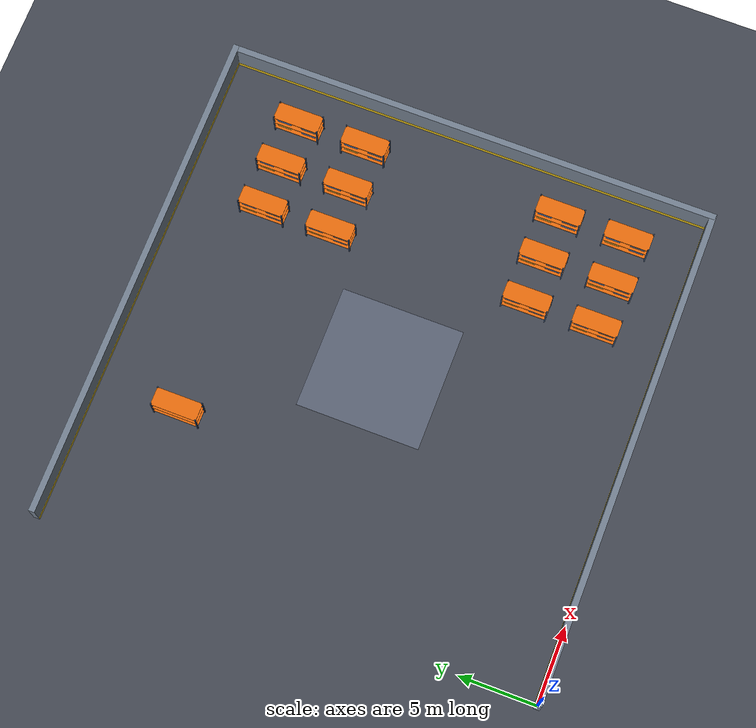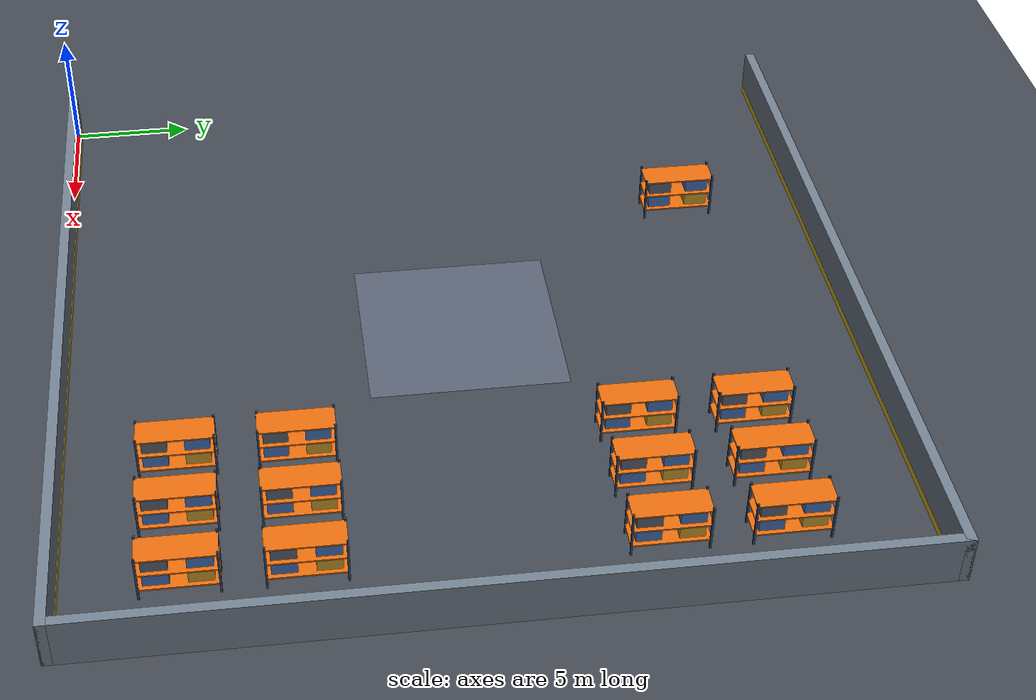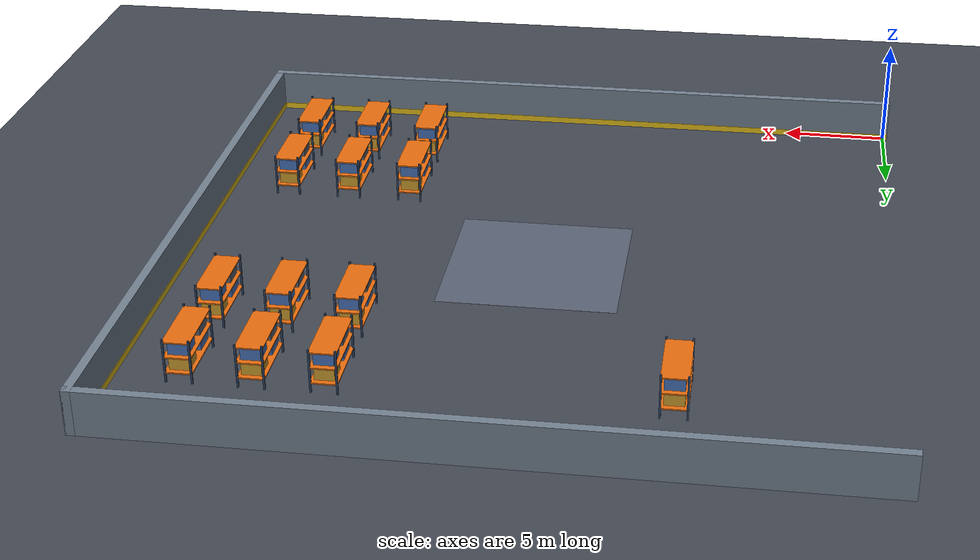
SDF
<sdf version="1.8">
 <world name="warehouse_m9_v2">
  <model name="ground_plane">
   <static>true</static>
   <pose>16.0 16.0 0.0 0 0 0</pose>
   <link name="floor_link">
    <collision name="collision">
     <geometry><plane><normal>0 0 1</normal><size>40 40</size></plane></geometry>
     <surface><friction><ode><mu>100</mu><mu2>50</mu2></ode></friction></surface>
    </collision>
    <visual name="floor_visual">
     <geometry><plane><normal>0 0 1</normal><size>40 40</size></plane></geometry>
     <material>
      <ambient>0.22 0.24 0.27 1.0</ambient>
      <diffuse>0.26 0.28 0.32 1.0</diffuse>
      <specular>0.45 0.45 0.50 1.0</specular>
     </material>
    </visual>
   </link>
  </model>
  <model name="wall_north">
   <static>true</static>
   <pose>16.0 32.0 1.0 0 0 0</pose>
   <link name="link">
    <collision name="col"><geometry><box><size>32.4 0.4 2.0</size></box></geometry></collision>
    <visual name="wall_vis">
     <geometry><box><size>32.4 0.4 2.0</size></box></geometry>
     <material><ambient>0.40 0.44 0.50 1.0</ambient><diffuse>0.45 0.50 0.56 1.0</diffuse></material>
    </visual>
    <visual name="kickplate">
     <pose>0.0 -0.201 -0.85 0 0 0</pose>
     <geometry><box><size>32.38 0.02 0.30</size></box></geometry>
     <material><ambient>0.85 0.70 0.10 1.0</ambient><diffuse>0.90 0.75 0.10 1.0</diffuse></material>
    </visual>
   </link>
  </model>
  <model name="wall_south">
   <static>true</static>
   <pose>16.0 0.0 1.0 0 0 0</pose>
   <link name="link">
    <collision name="col"><geometry><box><size>32.4 0.4 2.0</size></box></geometry></collision>
    <visual name="wall_vis">
     <geometry><box><size>32.4 0.4 2.0</size></box></geometry>
     <material><ambient>0.40 0.44 0.50 1.0</ambient><diffuse>0.45 0.50 0.56 1.0</diffuse></material>
    </visual>
    <visual name="kickplate">
     <pose>0.0 0.201 -0.85 0 0 0</pose>
     <geometry><box><size>32.38 0.02 0.30</size></box></geometry>
     <material><ambient>0.85 0.70 0.10 1.0</ambient><diffuse>0.90 0.75 0.10 1.0</diffuse></material>
    </visual>
   </link>
  </model>
  <model name="wall_east">
   <static>true</static>
   <pose>32.0 16.0 1.0 0 0 0</pose>
   <link name="link">
    <collision name="col"><geometry><box><size>0.4 32.4 2.0</size></box></geometry></collision>
    <visual name="wall_vis">
     <geometry><box><size>0.4 32.4 2.0</size></box></geometry>
     <material><ambient>0.40 0.44 0.50 1.0</ambient><diffuse>0.45 0.50 0.56 1.0</diffuse></material>
    </visual>
    <visual name="kickplate">
     <pose>-0.201 0.0 -0.85 0 0 0</pose>
     <geometry><box><size>0.02 32.38 0.30</size></box></geometry>
     <material><ambient>0.85 0.70 0.10 1.0</ambient><diffuse>0.90 0.75 0.10 1.0</diffuse></material>
    </visual>
   </link>
  </model>
  <model name="hub_markings">
   <static>true</static>
   <pose>16.0 16.0 0.002 0 0 0</pose>
   <link name="hub_link">
    <visual name="hub_perimeter">
     <geometry><box><size>8.0 8.0 0.001</size></box></geometry>
     <material><ambient>0.30 0.32 0.38 1.0</ambient><diffuse>0.35 0.38 0.45 1.0</diffuse></material>
    </visual>
   </link>
  </model>
  <model name="rack_04">
   <static>true</static>
   <pose>23.0 4.5 1.0 0 0 0</pose>
   <link name="link">
    <collision name="col"><geometry><box><size>1.2 3.0 2.0</size></box></geometry></collision>
    <visual name="frame_fl">
     <pose>-0.55 -1.45 0 0 0 0</pose>
     <geometry><box><size>0.08 0.08 2.0</size></box></geometry>
     <material><ambient>0.15 0.22 0.32 1.0</ambient><diffuse>0.18 0.26 0.38 1.0</diffuse></material>
    </visual>
    <visual name="frame_fr">
     <pose>0.55 -1.45 0 0 0 0</pose>
     <geometry><box><size>0.08 0.08 2.0</size></box></geometry>
     <material><ambient>0.15 0.22 0.32 1.0</ambient><diffuse>0.18 0.26 0.38 1.0</diffuse></material>
    </visual>
    <visual name="frame_rl">
     <pose>-0.55 1.45 0 0 0 0</pose>
     <geometry><box><size>0.08 0.08 2.0</size></box></geometry>
     <material><ambient>0.15 0.22 0.32 1.0</ambient><diffuse>0.18 0.26 0.38 1.0</diffuse></material>
    </visual>
    <visual name="frame_rr">
     <pose>0.55 1.45 0 0 0 0</pose>
     <geometry><box><size>0.08 0.08 2.0</size></box></geometry>
     <material><ambient>0.15 0.22 0.32 1.0</ambient><diffuse>0.18 0.26 0.38 1.0</diffuse></material>
    </visual>
    <visual name="shelf_tier1">
     <pose>0 0 -0.55 0 0 0</pose>
     <geometry><box><size>1.16 2.96 0.06</size></box></geometry>
     <material><ambient>0.85 0.38 0.05 1.0</ambient><diffuse>0.90 0.42 0.05 1.0</diffuse></material>
    </visual>
    <visual name="shelf_tier2">
     <pose>0 0 0.15 0 0 0</pose>
     <geometry><box><size>1.16 2.96 0.06</size></box></geometry>
     <material><ambient>0.85 0.38 0.05 1.0</ambient><diffuse>0.90 0.42 0.05 1.0</diffuse></material>
    </visual>
    <visual name="shelf_tier3">
     <pose>0 0 0.85 0 0 0</pose>
     <geometry><box><size>1.16 2.96 0.06</size></box></geometry>
     <material><ambient>0.85 0.38 0.05 1.0</ambient><diffuse>0.90 0.42 0.05 1.0</diffuse></material>
    </visual>
    <visual name="cargo_1">
     <pose>0 -0.8 -0.25 0 0 0</pose>
     <geometry><box><size>0.85 0.95 0.50</size></box></geometry>
     <material><ambient>0.25 0.40 0.65 1.0</ambient><diffuse>0.28 0.45 0.72 1.0</diffuse></material>
    </visual>
    <visual name="cargo_2">
     <pose>0 0.8 -0.25 0 0 0</pose>
     <geometry><box><size>0.85 0.95 0.50</size></box></geometry>
     <material><ambient>0.70 0.55 0.15 1.0</ambient><diffuse>0.80 0.62 0.18 1.0</diffuse></material>
    </visual>
    <visual name="cargo_3">
     <pose>0 -0.8 0.45 0 0 0</pose>
     <geometry><box><size>0.85 0.95 0.50</size></box></geometry>
     <material><ambient>0.30 0.34 0.38 1.0</ambient><diffuse>0.35 0.38 0.44 1.0</diffuse></material>
    </visual>
    <visual name="cargo_4">
     <pose>0 0.8 0.45 0 0 0</pose>
     <geometry><box><size>0.85 0.95 0.50</size></box></geometry>
     <material><ambient>0.25 0.40 0.65 1.0</ambient><diffuse>0.28 0.45 0.72 1.0</diffuse></material>
    </visual>
   </link>
  </model>
  <model name="rack_05">
   <static>true</static>
   <pose>26.0 4.5 1.0 0 0 0</pose>
   <link name="link">
    <collision name="col"><geometry><box><size>1.2 3.0 2.0</size></box></geometry></collision>
    <visual name="frame_fl">
     <pose>-0.55 -1.45 0 0 0 0</pose>
     <geometry><box><size>0.08 0.08 2.0</size></box></geometry>
     <material><ambient>0.15 0.22 0.32 1.0</ambient><diffuse>0.18 0.26 0.38 1.0</diffuse></material>
    </visual>
    <visual name="frame_fr">
     <pose>0.55 -1.45 0 0 0 0</pose>
     <geometry><box><size>0.08 0.08 2.0</size></box></geometry>
     <material><ambient>0.15 0.22 0.32 1.0</ambient><diffuse>0.18 0.26 0.38 1.0</diffuse></material>
    </visual>
    <visual name="frame_rl">
     <pose>-0.55 1.45 0 0 0 0</pose>
     <geometry><box><size>0.08 0.08 2.0</size></box></geometry>
     <material><ambient>0.15 0.22 0.32 1.0</ambient><diffuse>0.18 0.26 0.38 1.0</diffuse></material>
    </visual>
    <visual name="frame_rr">
     <pose>0.55 1.45 0 0 0 0</pose>
     <geometry><box><size>0.08 0.08 2.0</size></box></geometry>
     <material><ambient>0.15 0.22 0.32 1.0</ambient><diffuse>0.18 0.26 0.38 1.0</diffuse></material>
    </visual>
    <visual name="shelf_tier1">
     <pose>0 0 -0.55 0 0 0</pose>
     <geometry><box><size>1.16 2.96 0.06</size></box></geometry>
     <material><ambient>0.85 0.38 0.05 1.0</ambient><diffuse>0.90 0.42 0.05 1.0</diffuse></material>
    </visual>
    <visual name="shelf_tier2">
     <pose>0 0 0.15 0 0 0</pose>
     <geometry><box><size>1.16 2.96 0.06</size></box></geometry>
     <material><ambient>0.85 0.38 0.05 1.0</ambient><diffuse>0.90 0.42 0.05 1.0</diffuse></material>
    </visual>
    <visual name="shelf_tier3">
     <pose>0 0 0.85 0 0 0</pose>
     <geometry><box><size>1.16 2.96 0.06</size></box></geometry>
     <material><ambient>0.85 0.38 0.05 1.0</ambient><diffuse>0.90 0.42 0.05 1.0</diffuse></material>
    </visual>
    <visual name="cargo_1">
     <pose>0 -0.8 -0.25 0 0 0</pose>
     <geometry><box><size>0.85 0.95 0.50</size></box></geometry>
     <material><ambient>0.25 0.40 0.65 1.0</ambient><diffuse>0.28 0.45 0.72 1.0</diffuse></material>
    </visual>
    <visual name="cargo_2">
     <pose>0 0.8 -0.25 0 0 0</pose>
     <geometry><box><size>0.85 0.95 0.50</size></box></geometry>
     <material><ambient>0.70 0.55 0.15 1.0</ambient><diffuse>0.80 0.62 0.18 1.0</diffuse></material>
    </visual>
    <visual name="cargo_3">
     <pose>0 -0.8 0.45 0 0 0</pose>
     <geometry><box><size>0.85 0.95 0.50</size></box></geometry>
     <material><ambient>0.30 0.34 0.38 1.0</ambient><diffuse>0.35 0.38 0.44 1.0</diffuse></material>
    </visual>
    <visual name="cargo_4">
     <pose>0 0.8 0.45 0 0 0</pose>
     <geometry><box><size>0.85 0.95 0.50</size></box></geometry>
     <material><ambient>0.25 0.40 0.65 1.0</ambient><diffuse>0.28 0.45 0.72 1.0</diffuse></material>
    </visual>
   </link>
  </model>
  <model name="rack_06">
   <static>true</static>
   <pose>29.0 4.5 1.0 0 0 0</pose>
   <link name="link">
    <collision name="col"><geometry><box><size>1.2 3.0 2.0</size></box></geometry></collision>
    <visual name="frame_fl">
     <pose>-0.55 -1.45 0 0 0 0</pose>
     <geometry><box><size>0.08 0.08 2.0</size></box></geometry>
     <material><ambient>0.15 0.22 0.32 1.0</ambient><diffuse>0.18 0.26 0.38 1.0</diffuse></material>
    </visual>
    <visual name="frame_fr">
     <pose>0.55 -1.45 0 0 0 0</pose>
     <geometry><box><size>0.08 0.08 2.0</size></box></geometry>
     <material><ambient>0.15 0.22 0.32 1.0</ambient><diffuse>0.18 0.26 0.38 1.0</diffuse></material>
    </visual>
    <visual name="frame_rl">
     <pose>-0.55 1.45 0 0 0 0</pose>
     <geometry><box><size>0.08 0.08 2.0</size></box></geometry>
     <material><ambient>0.15 0.22 0.32 1.0</ambient><diffuse>0.18 0.26 0.38 1.0</diffuse></material>
    </visual>
    <visual name="frame_rr">
     <pose>0.55 1.45 0 0 0 0</pose>
     <geometry><box><size>0.08 0.08 2.0</size></box></geometry>
     <material><ambient>0.15 0.22 0.32 1.0</ambient><diffuse>0.18 0.26 0.38 1.0</diffuse></material>
    </visual>
    <visual name="shelf_tier1">
     <pose>0 0 -0.55 0 0 0</pose>
     <geometry><box><size>1.16 2.96 0.06</size></box></geometry>
     <material><ambient>0.85 0.38 0.05 1.0</ambient><diffuse>0.90 0.42 0.05 1.0</diffuse></material>
    </visual>
    <visual name="shelf_tier2">
     <pose>0 0 0.15 0 0 0</pose>
     <geometry><box><size>1.16 2.96 0.06</size></box></geometry>
     <material><ambient>0.85 0.38 0.05 1.0</ambient><diffuse>0.90 0.42 0.05 1.0</diffuse></material>
    </visual>
    <visual name="shelf_tier3">
     <pose>0 0 0.85 0 0 0</pose>
     <geometry><box><size>1.16 2.96 0.06</size></box></geometry>
     <material><ambient>0.85 0.38 0.05 1.0</ambient><diffuse>0.90 0.42 0.05 1.0</diffuse></material>
    </visual>
    <visual name="cargo_1">
     <pose>0 -0.8 -0.25 0 0 0</pose>
     <geometry><box><size>0.85 0.95 0.50</size></box></geometry>
     <material><ambient>0.25 0.40 0.65 1.0</ambient><diffuse>0.28 0.45 0.72 1.0</diffuse></material>
    </visual>
    <visual name="cargo_2">
     <pose>0 0.8 -0.25 0 0 0</pose>
     <geometry><box><size>0.85 0.95 0.50</size></box></geometry>
     <material><ambient>0.70 0.55 0.15 1.0</ambient><diffuse>0.80 0.62 0.18 1.0</diffuse></material>
    </visual>
    <visual name="cargo_3">
     <pose>0 -0.8 0.45 0 0 0</pose>
     <geometry><box><size>0.85 0.95 0.50</size></box></geometry>
     <material><ambient>0.30 0.34 0.38 1.0</ambient><diffuse>0.35 0.38 0.44 1.0</diffuse></material>
    </visual>
    <visual name="cargo_4">
     <pose>0 0.8 0.45 0 0 0</pose>
     <geometry><box><size>0.85 0.95 0.50</size></box></geometry>
     <material><ambient>0.25 0.40 0.65 1.0</ambient><diffuse>0.28 0.45 0.72 1.0</diffuse></material>
    </visual>
   </link>
  </model>
  <model name="rack_10">
   <static>true</static>
   <pose>23.0 9.0 1.0 0 0 0</pose>
   <link name="link">
    <collision name="col"><geometry><box><size>1.2 3.0 2.0</size></box></geometry></collision>
    <visual name="frame_fl">
     <pose>-0.55 -1.45 0 0 0 0</pose>
     <geometry><box><size>0.08 0.08 2.0</size></box></geometry>
     <material><ambient>0.15 0.22 0.32 1.0</ambient><diffuse>0.18 0.26 0.38 1.0</diffuse></material>
    </visual>
    <visual name="frame_fr">
     <pose>0.55 -1.45 0 0 0 0</pose>
     <geometry><box><size>0.08 0.08 2.0</size></box></geometry>
     <material><ambient>0.15 0.22 0.32 1.0</ambient><diffuse>0.18 0.26 0.38 1.0</diffuse></material>
    </visual>
    <visual name="frame_rl">
     <pose>-0.55 1.45 0 0 0 0</pose>
     <geometry><box><size>0.08 0.08 2.0</size></box></geometry>
     <material><ambient>0.15 0.22 0.32 1.0</ambient><diffuse>0.18 0.26 0.38 1.0</diffuse></material>
    </visual>
    <visual name="frame_rr">
     <pose>0.55 1.45 0 0 0 0</pose>
     <geometry><box><size>0.08 0.08 2.0</size></box></geometry>
     <material><ambient>0.15 0.22 0.32 1.0</ambient><diffuse>0.18 0.26 0.38 1.0</diffuse></material>
    </visual>
    <visual name="shelf_tier1">
     <pose>0 0 -0.55 0 0 0</pose>
     <geometry><box><size>1.16 2.96 0.06</size></box></geometry>
     <material><ambient>0.85 0.38 0.05 1.0</ambient><diffuse>0.90 0.42 0.05 1.0</diffuse></material>
    </visual>
    <visual name="shelf_tier2">
     <pose>0 0 0.15 0 0 0</pose>
     <geometry><box><size>1.16 2.96 0.06</size></box></geometry>
     <material><ambient>0.85 0.38 0.05 1.0</ambient><diffuse>0.90 0.42 0.05 1.0</diffuse></material>
    </visual>
    <visual name="shelf_tier3">
     <pose>0 0 0.85 0 0 0</pose>
     <geometry><box><size>1.16 2.96 0.06</size></box></geometry>
     <material><ambient>0.85 0.38 0.05 1.0</ambient><diffuse>0.90 0.42 0.05 1.0</diffuse></material>
    </visual>
    <visual name="cargo_1">
     <pose>0 -0.8 -0.25 0 0 0</pose>
     <geometry><box><size>0.85 0.95 0.50</size></box></geometry>
     <material><ambient>0.25 0.40 0.65 1.0</ambient><diffuse>0.28 0.45 0.72 1.0</diffuse></material>
    </visual>
    <visual name="cargo_2">
     <pose>0 0.8 -0.25 0 0 0</pose>
     <geometry><box><size>0.85 0.95 0.50</size></box></geometry>
     <material><ambient>0.70 0.55 0.15 1.0</ambient><diffuse>0.80 0.62 0.18 1.0</diffuse></material>
    </visual>
    <visual name="cargo_3">
     <pose>0 -0.8 0.45 0 0 0</pose>
     <geometry><box><size>0.85 0.95 0.50</size></box></geometry>
     <material><ambient>0.30 0.34 0.38 1.0</ambient><diffuse>0.35 0.38 0.44 1.0</diffuse></material>
    </visual>
    <visual name="cargo_4">
     <pose>0 0.8 0.45 0 0 0</pose>
     <geometry><box><size>0.85 0.95 0.50</size></box></geometry>
     <material><ambient>0.25 0.40 0.65 1.0</ambient><diffuse>0.28 0.45 0.72 1.0</diffuse></material>
    </visual>
   </link>
  </model>
  <model name="rack_11">
   <static>true</static>
   <pose>26.0 9.0 1.0 0 0 0</pose>
   <link name="link">
    <collision name="col"><geometry><box><size>1.2 3.0 2.0</size></box></geometry></collision>
    <visual name="frame_fl">
     <pose>-0.55 -1.45 0 0 0 0</pose>
     <geometry><box><size>0.08 0.08 2.0</size></box></geometry>
     <material><ambient>0.15 0.22 0.32 1.0</ambient><diffuse>0.18 0.26 0.38 1.0</diffuse></material>
    </visual>
    <visual name="frame_fr">
     <pose>0.55 -1.45 0 0 0 0</pose>
     <geometry><box><size>0.08 0.08 2.0</size></box></geometry>
     <material><ambient>0.15 0.22 0.32 1.0</ambient><diffuse>0.18 0.26 0.38 1.0</diffuse></material>
    </visual>
    <visual name="frame_rl">
     <pose>-0.55 1.45 0 0 0 0</pose>
     <geometry><box><size>0.08 0.08 2.0</size></box></geometry>
     <material><ambient>0.15 0.22 0.32 1.0</ambient><diffuse>0.18 0.26 0.38 1.0</diffuse></material>
    </visual>
    <visual name="frame_rr">
     <pose>0.55 1.45 0 0 0 0</pose>
     <geometry><box><size>0.08 0.08 2.0</size></box></geometry>
     <material><ambient>0.15 0.22 0.32 1.0</ambient><diffuse>0.18 0.26 0.38 1.0</diffuse></material>
    </visual>
    <visual name="shelf_tier1">
     <pose>0 0 -0.55 0 0 0</pose>
     <geometry><box><size>1.16 2.96 0.06</size></box></geometry>
     <material><ambient>0.85 0.38 0.05 1.0</ambient><diffuse>0.90 0.42 0.05 1.0</diffuse></material>
    </visual>
    <visual name="shelf_tier2">
     <pose>0 0 0.15 0 0 0</pose>
     <geometry><box><size>1.16 2.96 0.06</size></box></geometry>
     <material><ambient>0.85 0.38 0.05 1.0</ambient><diffuse>0.90 0.42 0.05 1.0</diffuse></material>
    </visual>
    <visual name="shelf_tier3">
     <pose>0 0 0.85 0 0 0</pose>
     <geometry><box><size>1.16 2.96 0.06</size></box></geometry>
     <material><ambient>0.85 0.38 0.05 1.0</ambient><diffuse>0.90 0.42 0.05 1.0</diffuse></material>
    </visual>
    <visual name="cargo_1">
     <pose>0 -0.8 -0.25 0 0 0</pose>
     <geometry><box><size>0.85 0.95 0.50</size></box></geometry>
     <material><ambient>0.25 0.40 0.65 1.0</ambient><diffuse>0.28 0.45 0.72 1.0</diffuse></material>
    </visual>
    <visual name="cargo_2">
     <pose>0 0.8 -0.25 0 0 0</pose>
     <geometry><box><size>0.85 0.95 0.50</size></box></geometry>
     <material><ambient>0.70 0.55 0.15 1.0</ambient><diffuse>0.80 0.62 0.18 1.0</diffuse></material>
    </visual>
    <visual name="cargo_3">
     <pose>0 -0.8 0.45 0 0 0</pose>
     <geometry><box><size>0.85 0.95 0.50</size></box></geometry>
     <material><ambient>0.30 0.34 0.38 1.0</ambient><diffuse>0.35 0.38 0.44 1.0</diffuse></material>
    </visual>
    <visual name="cargo_4">
     <pose>0 0.8 0.45 0 0 0</pose>
     <geometry><box><size>0.85 0.95 0.50</size></box></geometry>
     <material><ambient>0.25 0.40 0.65 1.0</ambient><diffuse>0.28 0.45 0.72 1.0</diffuse></material>
    </visual>
   </link>
  </model>
  <model name="rack_12">
   <static>true</static>
   <pose>29.0 9.0 1.0 0 0 0</pose>
   <link name="link">
    <collision name="col"><geometry><box><size>1.2 3.0 2.0</size></box></geometry></collision>
    <visual name="frame_fl">
     <pose>-0.55 -1.45 0 0 0 0</pose>
     <geometry><box><size>0.08 0.08 2.0</size></box></geometry>
     <material><ambient>0.15 0.22 0.32 1.0</ambient><diffuse>0.18 0.26 0.38 1.0</diffuse></material>
    </visual>
    <visual name="frame_fr">
     <pose>0.55 -1.45 0 0 0 0</pose>
     <geometry><box><size>0.08 0.08 2.0</size></box></geometry>
     <material><ambient>0.15 0.22 0.32 1.0</ambient><diffuse>0.18 0.26 0.38 1.0</diffuse></material>
    </visual>
    <visual name="frame_rl">
     <pose>-0.55 1.45 0 0 0 0</pose>
     <geometry><box><size>0.08 0.08 2.0</size></box></geometry>
     <material><ambient>0.15 0.22 0.32 1.0</ambient><diffuse>0.18 0.26 0.38 1.0</diffuse></material>
    </visual>
    <visual name="frame_rr">
     <pose>0.55 1.45 0 0 0 0</pose>
     <geometry><box><size>0.08 0.08 2.0</size></box></geometry>
     <material><ambient>0.15 0.22 0.32 1.0</ambient><diffuse>0.18 0.26 0.38 1.0</diffuse></material>
    </visual>
    <visual name="shelf_tier1">
     <pose>0 0 -0.55 0 0 0</pose>
     <geometry><box><size>1.16 2.96 0.06</size></box></geometry>
     <material><ambient>0.85 0.38 0.05 1.0</ambient><diffuse>0.90 0.42 0.05 1.0</diffuse></material>
    </visual>
    <visual name="shelf_tier2">
     <pose>0 0 0.15 0 0 0</pose>
     <geometry><box><size>1.16 2.96 0.06</size></box></geometry>
     <material><ambient>0.85 0.38 0.05 1.0</ambient><diffuse>0.90 0.42 0.05 1.0</diffuse></material>
    </visual>
    <visual name="shelf_tier3">
     <pose>0 0 0.85 0 0 0</pose>
     <geometry><box><size>1.16 2.96 0.06</size></box></geometry>
     <material><ambient>0.85 0.38 0.05 1.0</ambient><diffuse>0.90 0.42 0.05 1.0</diffuse></material>
    </visual>
    <visual name="cargo_1">
     <pose>0 -0.8 -0.25 0 0 0</pose>
     <geometry><box><size>0.85 0.95 0.50</size></box></geometry>
     <material><ambient>0.25 0.40 0.65 1.0</ambient><diffuse>0.28 0.45 0.72 1.0</diffuse></material>
    </visual>
    <visual name="cargo_2">
     <pose>0 0.8 -0.25 0 0 0</pose>
     <geometry><box><size>0.85 0.95 0.50</size></box></geometry>
     <material><ambient>0.70 0.55 0.15 1.0</ambient><diffuse>0.80 0.62 0.18 1.0</diffuse></material>
    </visual>
    <visual name="cargo_3">
     <pose>0 -0.8 0.45 0 0 0</pose>
     <geometry><box><size>0.85 0.95 0.50</size></box></geometry>
     <material><ambient>0.30 0.34 0.38 1.0</ambient><diffuse>0.35 0.38 0.44 1.0</diffuse></material>
    </visual>
    <visual name="cargo_4">
     <pose>0 0.8 0.45 0 0 0</pose>
     <geometry><box><size>0.85 0.95 0.50</size></box></geometry>
     <material><ambient>0.25 0.40 0.65 1.0</ambient><diffuse>0.28 0.45 0.72 1.0</diffuse></material>
    </visual>
   </link>
  </model>
  <model name="rack_16">
   <static>true</static>
   <pose>23.0 22.0 1.0 0 0 0</pose>
   <link name="link">
    <collision name="col"><geometry><box><size>1.2 3.0 2.0</size></box></geometry></collision>
    <visual name="frame_fl">
     <pose>-0.55 -1.45 0 0 0 0</pose>
     <geometry><box><size>0.08 0.08 2.0</size></box></geometry>
     <material><ambient>0.15 0.22 0.32 1.0</ambient><diffuse>0.18 0.26 0.38 1.0</diffuse></material>
    </visual>
    <visual name="frame_fr">
     <pose>0.55 -1.45 0 0 0 0</pose>
     <geometry><box><size>0.08 0.08 2.0</size></box></geometry>
     <material><ambient>0.15 0.22 0.32 1.0</ambient><diffuse>0.18 0.26 0.38 1.0</diffuse></material>
    </visual>
    <visual name="frame_rl">
     <pose>-0.55 1.45 0 0 0 0</pose>
     <geometry><box><size>0.08 0.08 2.0</size></box></geometry>
     <material><ambient>0.15 0.22 0.32 1.0</ambient><diffuse>0.18 0.26 0.38 1.0</diffuse></material>
    </visual>
    <visual name="frame_rr">
     <pose>0.55 1.45 0 0 0 0</pose>
     <geometry><box><size>0.08 0.08 2.0</size></box></geometry>
     <material><ambient>0.15 0.22 0.32 1.0</ambient><diffuse>0.18 0.26 0.38 1.0</diffuse></material>
    </visual>
    <visual name="shelf_tier1">
     <pose>0 0 -0.55 0 0 0</pose>
     <geometry><box><size>1.16 2.96 0.06</size></box></geometry>
     <material><ambient>0.85 0.38 0.05 1.0</ambient><diffuse>0.90 0.42 0.05 1.0</diffuse></material>
    </visual>
    <visual name="shelf_tier2">
     <pose>0 0 0.15 0 0 0</pose>
     <geometry><box><size>1.16 2.96 0.06</size></box></geometry>
     <material><ambient>0.85 0.38 0.05 1.0</ambient><diffuse>0.90 0.42 0.05 1.0</diffuse></material>
    </visual>
    <visual name="shelf_tier3">
     <pose>0 0 0.85 0 0 0</pose>
     <geometry><box><size>1.16 2.96 0.06</size></box></geometry>
     <material><ambient>0.85 0.38 0.05 1.0</ambient><diffuse>0.90 0.42 0.05 1.0</diffuse></material>
    </visual>
    <visual name="cargo_1">
     <pose>0 -0.8 -0.25 0 0 0</pose>
     <geometry><box><size>0.85 0.95 0.50</size></box></geometry>
     <material><ambient>0.25 0.40 0.65 1.0</ambient><diffuse>0.28 0.45 0.72 1.0</diffuse></material>
    </visual>
    <visual name="cargo_2">
     <pose>0 0.8 -0.25 0 0 0</pose>
     <geometry><box><size>0.85 0.95 0.50</size></box></geometry>
     <material><ambient>0.70 0.55 0.15 1.0</ambient><diffuse>0.80 0.62 0.18 1.0</diffuse></material>
    </visual>
    <visual name="cargo_3">
     <pose>0 -0.8 0.45 0 0 0</pose>
     <geometry><box><size>0.85 0.95 0.50</size></box></geometry>
     <material><ambient>0.30 0.34 0.38 1.0</ambient><diffuse>0.35 0.38 0.44 1.0</diffuse></material>
    </visual>
    <visual name="cargo_4">
     <pose>0 0.8 0.45 0 0 0</pose>
     <geometry><box><size>0.85 0.95 0.50</size></box></geometry>
     <material><ambient>0.25 0.40 0.65 1.0</ambient><diffuse>0.28 0.45 0.72 1.0</diffuse></material>
    </visual>
   </link>
  </model>
  <model name="rack_17">
   <static>true</static>
   <pose>26.0 22.0 1.0 0 0 0</pose>
   <link name="link">
    <collision name="col"><geometry><box><size>1.2 3.0 2.0</size></box></geometry></collision>
    <visual name="frame_fl">
     <pose>-0.55 -1.45 0 0 0 0</pose>
     <geometry><box><size>0.08 0.08 2.0</size></box></geometry>
     <material><ambient>0.15 0.22 0.32 1.0</ambient><diffuse>0.18 0.26 0.38 1.0</diffuse></material>
    </visual>
    <visual name="frame_fr">
     <pose>0.55 -1.45 0 0 0 0</pose>
     <geometry><box><size>0.08 0.08 2.0</size></box></geometry>
     <material><ambient>0.15 0.22 0.32 1.0</ambient><diffuse>0.18 0.26 0.38 1.0</diffuse></material>
    </visual>
    <visual name="frame_rl">
     <pose>-0.55 1.45 0 0 0 0</pose>
     <geometry><box><size>0.08 0.08 2.0</size></box></geometry>
     <material><ambient>0.15 0.22 0.32 1.0</ambient><diffuse>0.18 0.26 0.38 1.0</diffuse></material>
    </visual>
    <visual name="frame_rr">
     <pose>0.55 1.45 0 0 0 0</pose>
     <geometry><box><size>0.08 0.08 2.0</size></box></geometry>
     <material><ambient>0.15 0.22 0.32 1.0</ambient><diffuse>0.18 0.26 0.38 1.0</diffuse></material>
    </visual>
    <visual name="shelf_tier1">
     <pose>0 0 -0.55 0 0 0</pose>
     <geometry><box><size>1.16 2.96 0.06</size></box></geometry>
     <material><ambient>0.85 0.38 0.05 1.0</ambient><diffuse>0.90 0.42 0.05 1.0</diffuse></material>
    </visual>
    <visual name="shelf_tier2">
     <pose>0 0 0.15 0 0 0</pose>
     <geometry><box><size>1.16 2.96 0.06</size></box></geometry>
     <material><ambient>0.85 0.38 0.05 1.0</ambient><diffuse>0.90 0.42 0.05 1.0</diffuse></material>
    </visual>
    <visual name="shelf_tier3">
     <pose>0 0 0.85 0 0 0</pose>
     <geometry><box><size>1.16 2.96 0.06</size></box></geometry>
     <material><ambient>0.85 0.38 0.05 1.0</ambient><diffuse>0.90 0.42 0.05 1.0</diffuse></material>
    </visual>
    <visual name="cargo_1">
     <pose>0 -0.8 -0.25 0 0 0</pose>
     <geometry><box><size>0.85 0.95 0.50</size></box></geometry>
     <material><ambient>0.25 0.40 0.65 1.0</ambient><diffuse>0.28 0.45 0.72 1.0</diffuse></material>
    </visual>
    <visual name="cargo_2">
     <pose>0 0.8 -0.25 0 0 0</pose>
     <geometry><box><size>0.85 0.95 0.50</size></box></geometry>
     <material><ambient>0.70 0.55 0.15 1.0</ambient><diffuse>0.80 0.62 0.18 1.0</diffuse></material>
    </visual>
    <visual name="cargo_3">
     <pose>0 -0.8 0.45 0 0 0</pose>
     <geometry><box><size>0.85 0.95 0.50</size></box></geometry>
     <material><ambient>0.30 0.34 0.38 1.0</ambient><diffuse>0.35 0.38 0.44 1.0</diffuse></material>
    </visual>
    <visual name="cargo_4">
     <pose>0 0.8 0.45 0 0 0</pose>
     <geometry><box><size>0.85 0.95 0.50</size></box></geometry>
     <material><ambient>0.25 0.40 0.65 1.0</ambient><diffuse>0.28 0.45 0.72 1.0</diffuse></material>
    </visual>
   </link>
  </model>
  <model name="rack_18">
   <static>true</static>
   <pose>29.0 22.0 1.0 0 0 0</pose>
   <link name="link">
    <collision name="col"><geometry><box><size>1.2 3.0 2.0</size></box></geometry></collision>
    <visual name="frame_fl">
     <pose>-0.55 -1.45 0 0 0 0</pose>
     <geometry><box><size>0.08 0.08 2.0</size></box></geometry>
     <material><ambient>0.15 0.22 0.32 1.0</ambient><diffuse>0.18 0.26 0.38 1.0</diffuse></material>
    </visual>
    <visual name="frame_fr">
     <pose>0.55 -1.45 0 0 0 0</pose>
     <geometry><box><size>0.08 0.08 2.0</size></box></geometry>
     <material><ambient>0.15 0.22 0.32 1.0</ambient><diffuse>0.18 0.26 0.38 1.0</diffuse></material>
    </visual>
    <visual name="frame_rl">
     <pose>-0.55 1.45 0 0 0 0</pose>
     <geometry><box><size>0.08 0.08 2.0</size></box></geometry>
     <material><ambient>0.15 0.22 0.32 1.0</ambient><diffuse>0.18 0.26 0.38 1.0</diffuse></material>
    </visual>
    <visual name="frame_rr">
     <pose>0.55 1.45 0 0 0 0</pose>
     <geometry><box><size>0.08 0.08 2.0</size></box></geometry>
     <material><ambient>0.15 0.22 0.32 1.0</ambient><diffuse>0.18 0.26 0.38 1.0</diffuse></material>
    </visual>
    <visual name="shelf_tier1">
     <pose>0 0 -0.55 0 0 0</pose>
     <geometry><box><size>1.16 2.96 0.06</size></box></geometry>
     <material><ambient>0.85 0.38 0.05 1.0</ambient><diffuse>0.90 0.42 0.05 1.0</diffuse></material>
    </visual>
    <visual name="shelf_tier2">
     <pose>0 0 0.15 0 0 0</pose>
     <geometry><box><size>1.16 2.96 0.06</size></box></geometry>
     <material><ambient>0.85 0.38 0.05 1.0</ambient><diffuse>0.90 0.42 0.05 1.0</diffuse></material>
    </visual>
    <visual name="shelf_tier3">
     <pose>0 0 0.85 0 0 0</pose>
     <geometry><box><size>1.16 2.96 0.06</size></box></geometry>
     <material><ambient>0.85 0.38 0.05 1.0</ambient><diffuse>0.90 0.42 0.05 1.0</diffuse></material>
    </visual>
    <visual name="cargo_1">
     <pose>0 -0.8 -0.25 0 0 0</pose>
     <geometry><box><size>0.85 0.95 0.50</size></box></geometry>
     <material><ambient>0.25 0.40 0.65 1.0</ambient><diffuse>0.28 0.45 0.72 1.0</diffuse></material>
    </visual>
    <visual name="cargo_2">
     <pose>0 0.8 -0.25 0 0 0</pose>
     <geometry><box><size>0.85 0.95 0.50</size></box></geometry>
     <material><ambient>0.70 0.55 0.15 1.0</ambient><diffuse>0.80 0.62 0.18 1.0</diffuse></material>
    </visual>
    <visual name="cargo_3">
     <pose>0 -0.8 0.45 0 0 0</pose>
     <geometry><box><size>0.85 0.95 0.50</size></box></geometry>
     <material><ambient>0.30 0.34 0.38 1.0</ambient><diffuse>0.35 0.38 0.44 1.0</diffuse></material>
    </visual>
    <visual name="cargo_4">
     <pose>0 0.8 0.45 0 0 0</pose>
     <geometry><box><size>0.85 0.95 0.50</size></box></geometry>
     <material><ambient>0.25 0.40 0.65 1.0</ambient><diffuse>0.28 0.45 0.72 1.0</diffuse></material>
    </visual>
   </link>
  </model>
  <model name="rack_21">
   <static>true</static>
   <pose>9.0 26.5 1.0 0 0 0</pose>
   <link name="link">
    <collision name="col"><geometry><box><size>1.2 3.0 2.0</size></box></geometry></collision>
    <visual name="frame_fl">
     <pose>-0.55 -1.45 0 0 0 0</pose>
     <geometry><box><size>0.08 0.08 2.0</size></box></geometry>
     <material><ambient>0.15 0.22 0.32 1.0</ambient><diffuse>0.18 0.26 0.38 1.0</diffuse></material>
    </visual>
    <visual name="frame_fr">
     <pose>0.55 -1.45 0 0 0 0</pose>
     <geometry><box><size>0.08 0.08 2.0</size></box></geometry>
     <material><ambient>0.15 0.22 0.32 1.0</ambient><diffuse>0.18 0.26 0.38 1.0</diffuse></material>
    </visual>
    <visual name="frame_rl">
     <pose>-0.55 1.45 0 0 0 0</pose>
     <geometry><box><size>0.08 0.08 2.0</size></box></geometry>
     <material><ambient>0.15 0.22 0.32 1.0</ambient><diffuse>0.18 0.26 0.38 1.0</diffuse></material>
    </visual>
    <visual name="frame_rr">
     <pose>0.55 1.45 0 0 0 0</pose>
     <geometry><box><size>0.08 0.08 2.0</size></box></geometry>
     <material><ambient>0.15 0.22 0.32 1.0</ambient><diffuse>0.18 0.26 0.38 1.0</diffuse></material>
    </visual>
    <visual name="shelf_tier1">
     <pose>0 0 -0.55 0 0 0</pose>
     <geometry><box><size>1.16 2.96 0.06</size></box></geometry>
     <material><ambient>0.85 0.38 0.05 1.0</ambient><diffuse>0.90 0.42 0.05 1.0</diffuse></material>
    </visual>
    <visual name="shelf_tier2">
     <pose>0 0 0.15 0 0 0</pose>
     <geometry><box><size>1.16 2.96 0.06</size></box></geometry>
     <material><ambient>0.85 0.38 0.05 1.0</ambient><diffuse>0.90 0.42 0.05 1.0</diffuse></material>
    </visual>
    <visual name="shelf_tier3">
     <pose>0 0 0.85 0 0 0</pose>
     <geometry><box><size>1.16 2.96 0.06</size></box></geometry>
     <material><ambient>0.85 0.38 0.05 1.0</ambient><diffuse>0.90 0.42 0.05 1.0</diffuse></material>
    </visual>
    <visual name="cargo_1">
     <pose>0 -0.8 -0.25 0 0 0</pose>
     <geometry><box><size>0.85 0.95 0.50</size></box></geometry>
     <material><ambient>0.25 0.40 0.65 1.0</ambient><diffuse>0.28 0.45 0.72 1.0</diffuse></material>
    </visual>
    <visual name="cargo_2">
     <pose>0 0.8 -0.25 0 0 0</pose>
     <geometry><box><size>0.85 0.95 0.50</size></box></geometry>
     <material><ambient>0.70 0.55 0.15 1.0</ambient><diffuse>0.80 0.62 0.18 1.0</diffuse></material>
    </visual>
    <visual name="cargo_3">
     <pose>0 -0.8 0.45 0 0 0</pose>
     <geometry><box><size>0.85 0.95 0.50</size></box></geometry>
     <material><ambient>0.30 0.34 0.38 1.0</ambient><diffuse>0.35 0.38 0.44 1.0</diffuse></material>
    </visual>
    <visual name="cargo_4">
     <pose>0 0.8 0.45 0 0 0</pose>
     <geometry><box><size>0.85 0.95 0.50</size></box></geometry>
     <material><ambient>0.25 0.40 0.65 1.0</ambient><diffuse>0.28 0.45 0.72 1.0</diffuse></material>
    </visual>
   </link>
  </model>
  <model name="rack_22">
   <static>true</static>
   <pose>23.0 26.5 1.0 0 0 0</pose>
   <link name="link">
    <collision name="col"><geometry><box><size>1.2 3.0 2.0</size></box></geometry></collision>
    <visual name="frame_fl">
     <pose>-0.55 -1.45 0 0 0 0</pose>
     <geometry><box><size>0.08 0.08 2.0</size></box></geometry>
     <material><ambient>0.15 0.22 0.32 1.0</ambient><diffuse>0.18 0.26 0.38 1.0</diffuse></material>
    </visual>
    <visual name="frame_fr">
     <pose>0.55 -1.45 0 0 0 0</pose>
     <geometry><box><size>0.08 0.08 2.0</size></box></geometry>
     <material><ambient>0.15 0.22 0.32 1.0</ambient><diffuse>0.18 0.26 0.38 1.0</diffuse></material>
    </visual>
    <visual name="frame_rl">
     <pose>-0.55 1.45 0 0 0 0</pose>
     <geometry><box><size>0.08 0.08 2.0</size></box></geometry>
     <material><ambient>0.15 0.22 0.32 1.0</ambient><diffuse>0.18 0.26 0.38 1.0</diffuse></material>
    </visual>
    <visual name="frame_rr">
     <pose>0.55 1.45 0 0 0 0</pose>
     <geometry><box><size>0.08 0.08 2.0</size></box></geometry>
     <material><ambient>0.15 0.22 0.32 1.0</ambient><diffuse>0.18 0.26 0.38 1.0</diffuse></material>
    </visual>
    <visual name="shelf_tier1">
     <pose>0 0 -0.55 0 0 0</pose>
     <geometry><box><size>1.16 2.96 0.06</size></box></geometry>
     <material><ambient>0.85 0.38 0.05 1.0</ambient><diffuse>0.90 0.42 0.05 1.0</diffuse></material>
    </visual>
    <visual name="shelf_tier2">
     <pose>0 0 0.15 0 0 0</pose>
     <geometry><box><size>1.16 2.96 0.06</size></box></geometry>
     <material><ambient>0.85 0.38 0.05 1.0</ambient><diffuse>0.90 0.42 0.05 1.0</diffuse></material>
    </visual>
    <visual name="shelf_tier3">
     <pose>0 0 0.85 0 0 0</pose>
     <geometry><box><size>1.16 2.96 0.06</size></box></geometry>
     <material><ambient>0.85 0.38 0.05 1.0</ambient><diffuse>0.90 0.42 0.05 1.0</diffuse></material>
    </visual>
    <visual name="cargo_1">
     <pose>0 -0.8 -0.25 0 0 0</pose>
     <geometry><box><size>0.85 0.95 0.50</size></box></geometry>
     <material><ambient>0.25 0.40 0.65 1.0</ambient><diffuse>0.28 0.45 0.72 1.0</diffuse></material>
    </visual>
    <visual name="cargo_2">
     <pose>0 0.8 -0.25 0 0 0</pose>
     <geometry><box><size>0.85 0.95 0.50</size></box></geometry>
     <material><ambient>0.70 0.55 0.15 1.0</ambient><diffuse>0.80 0.62 0.18 1.0</diffuse></material>
    </visual>
    <visual name="cargo_3">
     <pose>0 -0.8 0.45 0 0 0</pose>
     <geometry><box><size>0.85 0.95 0.50</size></box></geometry>
     <material><ambient>0.30 0.34 0.38 1.0</ambient><diffuse>0.35 0.38 0.44 1.0</diffuse></material>
    </visual>
    <visual name="cargo_4">
     <pose>0 0.8 0.45 0 0 0</pose>
     <geometry><box><size>0.85 0.95 0.50</size></box></geometry>
     <material><ambient>0.25 0.40 0.65 1.0</ambient><diffuse>0.28 0.45 0.72 1.0</diffuse></material>
    </visual>
   </link>
  </model>
  <model name="rack_23">
   <static>true</static>
   <pose>26.0 26.5 1.0 0 0 0</pose>
   <link name="link">
    <collision name="col"><geometry><box><size>1.2 3.0 2.0</size></box></geometry></collision>
    <visual name="frame_fl">
     <pose>-0.55 -1.45 0 0 0 0</pose>
     <geometry><box><size>0.08 0.08 2.0</size></box></geometry>
     <material><ambient>0.15 0.22 0.32 1.0</ambient><diffuse>0.18 0.26 0.38 1.0</diffuse></material>
    </visual>
    <visual name="frame_fr">
     <pose>0.55 -1.45 0 0 0 0</pose>
     <geometry><box><size>0.08 0.08 2.0</size></box></geometry>
     <material><ambient>0.15 0.22 0.32 1.0</ambient><diffuse>0.18 0.26 0.38 1.0</diffuse></material>
    </visual>
    <visual name="frame_rl">
     <pose>-0.55 1.45 0 0 0 0</pose>
     <geometry><box><size>0.08 0.08 2.0</size></box></geometry>
     <material><ambient>0.15 0.22 0.32 1.0</ambient><diffuse>0.18 0.26 0.38 1.0</diffuse></material>
    </visual>
    <visual name="frame_rr">
     <pose>0.55 1.45 0 0 0 0</pose>
     <geometry><box><size>0.08 0.08 2.0</size></box></geometry>
     <material><ambient>0.15 0.22 0.32 1.0</ambient><diffuse>0.18 0.26 0.38 1.0</diffuse></material>
    </visual>
    <visual name="shelf_tier1">
     <pose>0 0 -0.55 0 0 0</pose>
     <geometry><box><size>1.16 2.96 0.06</size></box></geometry>
     <material><ambient>0.85 0.38 0.05 1.0</ambient><diffuse>0.90 0.42 0.05 1.0</diffuse></material>
    </visual>
    <visual name="shelf_tier2">
     <pose>0 0 0.15 0 0 0</pose>
     <geometry><box><size>1.16 2.96 0.06</size></box></geometry>
     <material><ambient>0.85 0.38 0.05 1.0</ambient><diffuse>0.90 0.42 0.05 1.0</diffuse></material>
    </visual>
    <visual name="shelf_tier3">
     <pose>0 0 0.85 0 0 0</pose>
     <geometry><box><size>1.16 2.96 0.06</size></box></geometry>
     <material><ambient>0.85 0.38 0.05 1.0</ambient><diffuse>0.90 0.42 0.05 1.0</diffuse></material>
    </visual>
    <visual name="cargo_1">
     <pose>0 -0.8 -0.25 0 0 0</pose>
     <geometry><box><size>0.85 0.95 0.50</size></box></geometry>
     <material><ambient>0.25 0.40 0.65 1.0</ambient><diffuse>0.28 0.45 0.72 1.0</diffuse></material>
    </visual>
    <visual name="cargo_2">
     <pose>0 0.8 -0.25 0 0 0</pose>
     <geometry><box><size>0.85 0.95 0.50</size></box></geometry>
     <material><ambient>0.70 0.55 0.15 1.0</ambient><diffuse>0.80 0.62 0.18 1.0</diffuse></material>
    </visual>
    <visual name="cargo_3">
     <pose>0 -0.8 0.45 0 0 0</pose>
     <geometry><box><size>0.85 0.95 0.50</size></box></geometry>
     <material><ambient>0.30 0.34 0.38 1.0</ambient><diffuse>0.35 0.38 0.44 1.0</diffuse></material>
    </visual>
    <visual name="cargo_4">
     <pose>0 0.8 0.45 0 0 0</pose>
     <geometry><box><size>0.85 0.95 0.50</size></box></geometry>
     <material><ambient>0.25 0.40 0.65 1.0</ambient><diffuse>0.28 0.45 0.72 1.0</diffuse></material>
    </visual>
   </link>
  </model>
  <model name="rack_24">
   <static>true</static>
   <pose>29.0 26.5 1.0 0 0 0</pose>
   <link name="link">
    <collision name="col"><geometry><box><size>1.2 3.0 2.0</size></box></geometry></collision>
    <visual name="frame_fl">
     <pose>-0.55 -1.45 0 0 0 0</pose>
     <geometry><box><size>0.08 0.08 2.0</size></box></geometry>
     <material><ambient>0.15 0.22 0.32 1.0</ambient><diffuse>0.18 0.26 0.38 1.0</diffuse></material>
    </visual>
    <visual name="frame_fr">
     <pose>0.55 -1.45 0 0 0 0</pose>
     <geometry><box><size>0.08 0.08 2.0</size></box></geometry>
     <material><ambient>0.15 0.22 0.32 1.0</ambient><diffuse>0.18 0.26 0.38 1.0</diffuse></material>
    </visual>
    <visual name="frame_rl">
     <pose>-0.55 1.45 0 0 0 0</pose>
     <geometry><box><size>0.08 0.08 2.0</size></box></geometry>
     <material><ambient>0.15 0.22 0.32 1.0</ambient><diffuse>0.18 0.26 0.38 1.0</diffuse></material>
    </visual>
    <visual name="frame_rr">
     <pose>0.55 1.45 0 0 0 0</pose>
     <geometry><box><size>0.08 0.08 2.0</size></box></geometry>
     <material><ambient>0.15 0.22 0.32 1.0</ambient><diffuse>0.18 0.26 0.38 1.0</diffuse></material>
    </visual>
    <visual name="shelf_tier1">
     <pose>0 0 -0.55 0 0 0</pose>
     <geometry><box><size>1.16 2.96 0.06</size></box></geometry>
     <material><ambient>0.85 0.38 0.05 1.0</ambient><diffuse>0.90 0.42 0.05 1.0</diffuse></material>
    </visual>
    <visual name="shelf_tier2">
     <pose>0 0 0.15 0 0 0</pose>
     <geometry><box><size>1.16 2.96 0.06</size></box></geometry>
     <material><ambient>0.85 0.38 0.05 1.0</ambient><diffuse>0.90 0.42 0.05 1.0</diffuse></material>
    </visual>
    <visual name="shelf_tier3">
     <pose>0 0 0.85 0 0 0</pose>
     <geometry><box><size>1.16 2.96 0.06</size></box></geometry>
     <material><ambient>0.85 0.38 0.05 1.0</ambient><diffuse>0.90 0.42 0.05 1.0</diffuse></material>
    </visual>
    <visual name="cargo_1">
     <pose>0 -0.8 -0.25 0 0 0</pose>
     <geometry><box><size>0.85 0.95 0.50</size></box></geometry>
     <material><ambient>0.25 0.40 0.65 1.0</ambient><diffuse>0.28 0.45 0.72 1.0</diffuse></material>
    </visual>
    <visual name="cargo_2">
     <pose>0 0.8 -0.25 0 0 0</pose>
     <geometry><box><size>0.85 0.95 0.50</size></box></geometry>
     <material><ambient>0.70 0.55 0.15 1.0</ambient><diffuse>0.80 0.62 0.18 1.0</diffuse></material>
    </visual>
    <visual name="cargo_3">
     <pose>0 -0.8 0.45 0 0 0</pose>
     <geometry><box><size>0.85 0.95 0.50</size></box></geometry>
     <material><ambient>0.30 0.34 0.38 1.0</ambient><diffuse>0.35 0.38 0.44 1.0</diffuse></material>
    </visual>
    <visual name="cargo_4">
     <pose>0 0.8 0.45 0 0 0</pose>
     <geometry><box><size>0.85 0.95 0.50</size></box></geometry>
     <material><ambient>0.25 0.40 0.65 1.0</ambient><diffuse>0.28 0.45 0.72 1.0</diffuse></material>
    </visual>
   </link>
  </model>
 </world>
</sdf>
